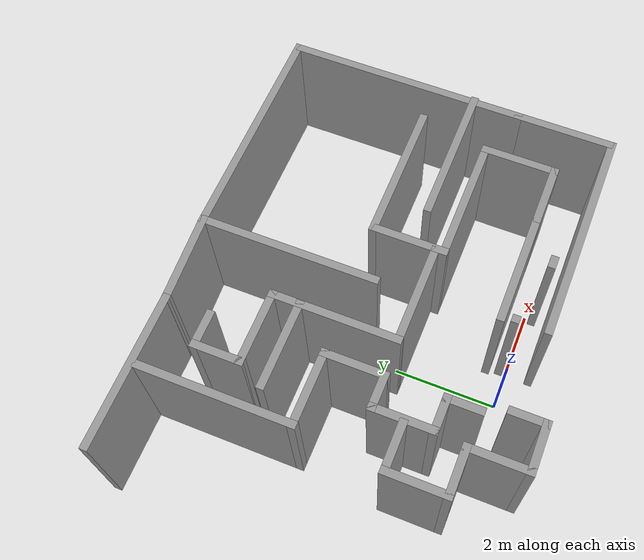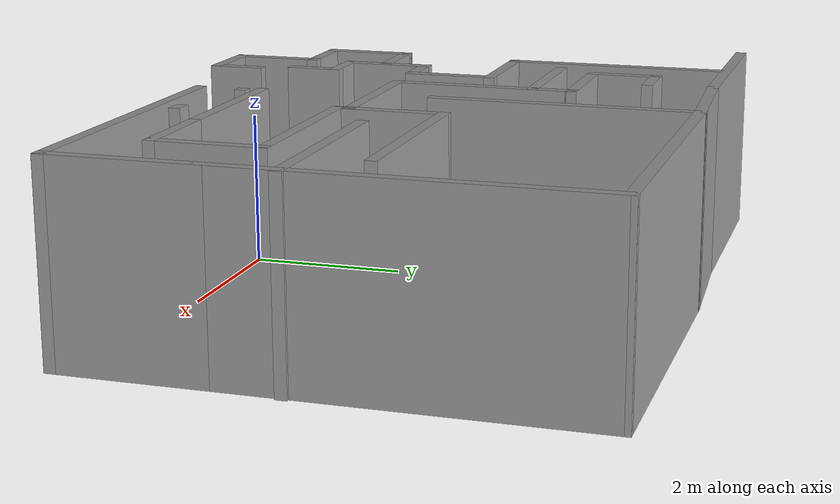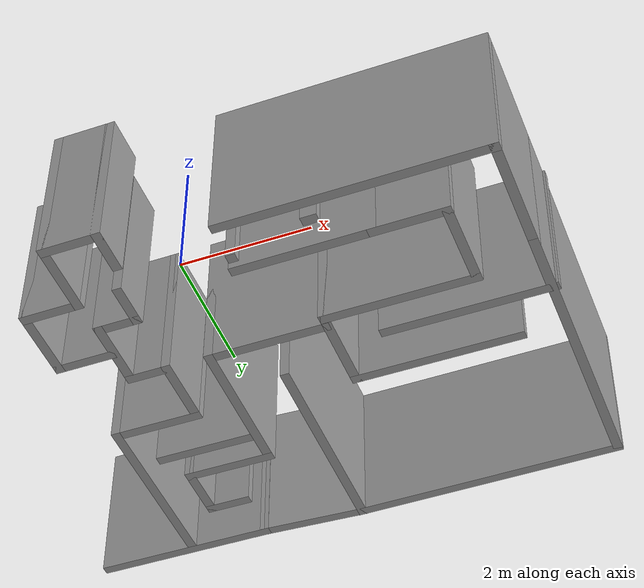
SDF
<?xml version='1.0'?>
<sdf version='1.6'>
  <model name='room2'>
    <pose frame=''>0.451595 2.56192 0 0 -0 0</pose>
    <link name='Wall_10'>
      <collision name='Wall_10_Collision'>
        <geometry>
          <box>
            <size>1.25 0.15 2.5</size>
          </box>
        </geometry>
        <pose frame=''>0 0 1.25 0 -0 0</pose>
      </collision>
      <visual name='Wall_10_Visual'>
        <pose frame=''>0 0 1.25 0 -0 0</pose>
        <geometry>
          <box>
            <size>1.25 0.15 2.5</size>
          </box>
        </geometry>
        <material>
          <script>
            <uri>file://media/materials/scripts/gazebo.material</uri>
            <name>Gazebo/Grey</name>
          </script>
          <ambient>1 1 1 1</ambient>
        </material>
        <meta>
          <layer>0</layer>
        </meta>
      </visual>
      <pose frame=''>-1.50674 -0.141525 0 0 -0 1.5708</pose>
    </link>
    <link name='Wall_11'>
      <collision name='Wall_11_Collision'>
        <geometry>
          <box>
            <size>1.5 0.15 2.5</size>
          </box>
        </geometry>
        <pose frame=''>0 0 1.25 0 -0 0</pose>
      </collision>
      <visual name='Wall_11_Visual'>
        <pose frame=''>0 0 1.25 0 -0 0</pose>
        <geometry>
          <box>
            <size>1.5 0.15 2.5</size>
          </box>
        </geometry>
        <material>
          <script>
            <uri>file://media/materials/scripts/gazebo.material</uri>
            <name>Gazebo/Grey</name>
          </script>
          <ambient>1 1 1 1</ambient>
        </material>
        <meta>
          <layer>0</layer>
        </meta>
      </visual>
      <pose frame=''>-2.18174 0.408475 0 0 -0 3.14159</pose>
    </link>
    <link name='Wall_12'>
      <collision name='Wall_12_Collision'>
        <geometry>
          <box>
            <size>3 0.15 2.5</size>
          </box>
        </geometry>
        <pose frame=''>0 0 1.25 0 -0 0</pose>
      </collision>
      <visual name='Wall_12_Visual'>
        <pose frame=''>0 0 1.25 0 -0 0</pose>
        <geometry>
          <box>
            <size>3 0.15 2.5</size>
          </box>
        </geometry>
        <material>
          <script>
            <uri>file://media/materials/scripts/gazebo.material</uri>
            <name>Gazebo/Grey</name>
          </script>
          <ambient>1 1 1 1</ambient>
        </material>
        <meta>
          <layer>0</layer>
        </meta>
      </visual>
      <pose frame=''>-2.85674 1.83347 0 0 -0 1.5708</pose>
    </link>
    <link name='Wall_14'>
      <collision name='Wall_14_Collision'>
        <geometry>
          <box>
            <size>3 0.15 2.5</size>
          </box>
        </geometry>
        <pose frame=''>0 0 1.25 0 -0 0</pose>
      </collision>
      <visual name='Wall_14_Visual'>
        <pose frame=''>0 0 1.25 0 -0 0</pose>
        <geometry>
          <box>
            <size>3 0.15 2.5</size>
          </box>
        </geometry>
        <material>
          <script>
            <uri>file://media/materials/scripts/gazebo.material</uri>
            <name>Gazebo/Grey</name>
          </script>
          <ambient>1 1 1 1</ambient>
        </material>
        <meta>
          <layer>0</layer>
        </meta>
      </visual>
      <pose frame=''>-2.99398 3.37703 0 0 -0 0</pose>
    </link>
    <link name='Wall_16'>
      <collision name='Wall_16_Collision'>
        <geometry>
          <box>
            <size>0.75 0.15 2.5</size>
          </box>
        </geometry>
        <pose frame=''>0 0 1.25 0 -0 0</pose>
      </collision>
      <visual name='Wall_16_Visual'>
        <pose frame=''>0 0 1.25 0 -0 0</pose>
        <geometry>
          <box>
            <size>0.75 0.15 2.5</size>
          </box>
        </geometry>
        <material>
          <script>
            <uri>file://media/materials/scripts/gazebo.material</uri>
            <name>Gazebo/Grey</name>
          </script>
          <ambient>1 1 1 1</ambient>
        </material>
        <meta>
          <layer>0</layer>
        </meta>
      </visual>
      <pose frame=''>-1.86898 2.52703 0 0 -0 3.14159</pose>
    </link>
    <link name='Wall_17'>
      <collision name='Wall_17_Collision'>
        <geometry>
          <box>
            <size>1 0.15 2.5</size>
          </box>
        </geometry>
        <pose frame=''>0 0 1.25 0 -0 0</pose>
      </collision>
      <visual name='Wall_17_Visual'>
        <pose frame=''>0 0 1.25 0 -0 0</pose>
        <geometry>
          <box>
            <size>1 0.15 2.5</size>
          </box>
        </geometry>
        <material>
          <script>
            <uri>file://media/materials/scripts/gazebo.material</uri>
            <name>Gazebo/Grey</name>
          </script>
          <ambient>1 1 1 1</ambient>
        </material>
        <meta>
          <layer>0</layer>
        </meta>
      </visual>
      <pose frame=''>-2.16898 2.10203 0 0 -0 -1.5708</pose>
    </link>
    <link name='Wall_18'>
      <collision name='Wall_18_Collision'>
        <geometry>
          <box>
            <size>1.5 0.15 2.5</size>
          </box>
        </geometry>
        <pose frame=''>0 0 1.25 0 -0 0</pose>
      </collision>
      <visual name='Wall_18_Visual'>
        <pose frame=''>0 0 1.25 0 -0 0</pose>
        <geometry>
          <box>
            <size>1.5 0.15 2.5</size>
          </box>
        </geometry>
        <material>
          <script>
            <uri>file://media/materials/scripts/gazebo.material</uri>
            <name>Gazebo/Grey</name>
          </script>
          <ambient>1 1 1 1</ambient>
        </material>
        <meta>
          <layer>0</layer>
        </meta>
      </visual>
      <pose frame=''>-1.49398 1.67703 0 0 -0 0</pose>
    </link>
    <link name='Wall_19'>
      <collision name='Wall_19_Collision'>
        <geometry>
          <box>
            <size>2.5 0.15 2.5</size>
          </box>
        </geometry>
        <pose frame=''>0 0 1.25 0 -0 0</pose>
      </collision>
      <visual name='Wall_19_Visual'>
        <pose frame=''>0 0 1.25 0 -0 0</pose>
        <geometry>
          <box>
            <size>2.5 0.15 2.5</size>
          </box>
        </geometry>
        <material>
          <script>
            <uri>file://media/materials/scripts/gazebo.material</uri>
            <name>Gazebo/Grey</name>
          </script>
          <ambient>1 1 1 1</ambient>
        </material>
        <meta>
          <layer>0</layer>
        </meta>
      </visual>
      <pose frame=''>-0.818983 0.502027 0 0 -0 -1.5708</pose>
    </link>
    <link name='Wall_2'>
      <collision name='Wall_2_Collision'>
        <geometry>
          <box>
            <size>1 0.15 2.5</size>
          </box>
        </geometry>
        <pose frame=''>0 0 1.25 0 -0 0</pose>
      </collision>
      <visual name='Wall_2_Visual'>
        <pose frame=''>0 0 1.25 0 -0 0</pose>
        <geometry>
          <box>
            <size>1 0.15 2.5</size>
          </box>
        </geometry>
        <material>
          <script>
            <uri>file://media/materials/scripts/gazebo.material</uri>
            <name>Gazebo/Grey</name>
          </script>
          <ambient>1 1 1 1</ambient>
        </material>
        <meta>
          <layer>0</layer>
        </meta>
      </visual>
      <pose frame=''>-1.75152 -3.46471 0 0 -0 3.14159</pose>
    </link>
    <link name='Wall_22'>
      <collision name='Wall_22_Collision'>
        <geometry>
          <box>
            <size>4.43213 0.15 2.5</size>
          </box>
        </geometry>
        <pose frame=''>0 0 1.25 0 -0 0</pose>
      </collision>
      <visual name='Wall_22_Visual'>
        <pose frame=''>0 0 1.25 0 -0 0</pose>
        <geometry>
          <box>
            <size>4.43213 0.15 2.5</size>
          </box>
        </geometry>
        <material>
          <script>
            <uri>file://media/materials/scripts/gazebo.material</uri>
            <name>Gazebo/Grey</name>
          </script>
          <ambient>1 1 1 1</ambient>
        </material>
        <meta>
          <layer>0</layer>
        </meta>
      </visual>
      <pose frame=''>2.24002 3.44403 0 0 -0 -0.007941</pose>
    </link>
    <link name='Wall_23'>
      <collision name='Wall_23_Collision'>
        <geometry>
          <box>
            <size>4.75 0.15 2.5</size>
          </box>
        </geometry>
        <pose frame=''>0 0 1.25 0 -0 0</pose>
      </collision>
      <visual name='Wall_23_Visual'>
        <pose frame=''>0 0 1.25 0 -0 0</pose>
        <geometry>
          <box>
            <size>4.75 0.15 2.5</size>
          </box>
        </geometry>
        <material>
          <script>
            <uri>file://media/materials/scripts/gazebo.material</uri>
            <name>Gazebo/Grey</name>
          </script>
          <ambient>1 1 1 1</ambient>
        </material>
        <meta>
          <layer>0</layer>
        </meta>
      </visual>
      <pose frame=''>4.38102 1.12703 0 0 -0 -1.5708</pose>
    </link>
    <link name='Wall_29'>
      <collision name='Wall_29_Collision'>
        <geometry>
          <box>
            <size>1.5 0.15 2.5</size>
          </box>
        </geometry>
        <pose frame=''>0 0 1.25 0 -0 0</pose>
      </collision>
      <visual name='Wall_29_Visual'>
        <pose frame=''>0 0 1.25 0 -0 0</pose>
        <geometry>
          <box>
            <size>1.5 0.15 2.5</size>
          </box>
        </geometry>
        <material>
          <script>
            <uri>file://media/materials/scripts/gazebo.material</uri>
            <name>Gazebo/Grey</name>
          </script>
          <ambient>1 1 1 1</ambient>
        </material>
        <meta>
          <layer>0</layer>
        </meta>
      </visual>
      <pose frame=''>1.07379 -0.154278 0 0 -0 -1.5708</pose>
    </link>
    <link name='Wall_3'>
      <collision name='Wall_3_Collision'>
        <geometry>
          <box>
            <size>1.25 0.15 2.5</size>
          </box>
        </geometry>
        <pose frame=''>0 0 1.25 0 -0 0</pose>
      </collision>
      <visual name='Wall_3_Visual'>
        <pose frame=''>0 0 1.25 0 -0 0</pose>
        <geometry>
          <box>
            <size>1.25 0.15 2.5</size>
          </box>
        </geometry>
        <material>
          <script>
            <uri>file://media/materials/scripts/gazebo.material</uri>
            <name>Gazebo/Grey</name>
          </script>
          <ambient>1 1 1 1</ambient>
        </material>
        <meta>
          <layer>0</layer>
        </meta>
      </visual>
      <pose frame=''>-2.17652 -2.91471 0 0 -0 1.5708</pose>
    </link>
    <link name='Wall_30'>
      <collision name='Wall_30_Collision'>
        <geometry>
          <box>
            <size>2.5 0.15 2.5</size>
          </box>
        </geometry>
        <pose frame=''>0 0 1.25 0 -0 0</pose>
      </collision>
      <visual name='Wall_30_Visual'>
        <pose frame=''>0 0 1.25 0 -0 0</pose>
        <geometry>
          <box>
            <size>2.5 0.15 2.5</size>
          </box>
        </geometry>
        <material>
          <script>
            <uri>file://media/materials/scripts/gazebo.material</uri>
            <name>Gazebo/Grey</name>
          </script>
          <ambient>1 1 1 1</ambient>
        </material>
        <meta>
          <layer>0</layer>
        </meta>
      </visual>
      <pose frame=''>2.24879 -0.829278 0 0 -0 0</pose>
    </link>
    <link name='Wall_31'>
      <collision name='Wall_31_Collision'>
        <geometry>
          <box>
            <size>1.5 0.15 2.5</size>
          </box>
        </geometry>
        <pose frame=''>0 0 1.25 0 -0 0</pose>
      </collision>
      <visual name='Wall_31_Visual'>
        <pose frame=''>0 0 1.25 0 -0 0</pose>
        <geometry>
          <box>
            <size>1.5 0.15 2.5</size>
          </box>
        </geometry>
        <material>
          <script>
            <uri>file://media/materials/scripts/gazebo.material</uri>
            <name>Gazebo/Grey</name>
          </script>
          <ambient>1 1 1 1</ambient>
        </material>
        <meta>
          <layer>0</layer>
        </meta>
      </visual>
      <pose frame=''>3.42379 -1.50428 0 0 -0 -1.5708</pose>
    </link>
    <link name='Wall_32'>
      <collision name='Wall_32_Collision'>
        <geometry>
          <box>
            <size>1.25 0.15 2.5</size>
          </box>
        </geometry>
        <pose frame=''>0 0 1.25 0 -0 0</pose>
      </collision>
      <visual name='Wall_32_Visual'>
        <pose frame=''>0 0 1.25 0 -0 0</pose>
        <geometry>
          <box>
            <size>1.25 0.15 2.5</size>
          </box>
        </geometry>
        <material>
          <script>
            <uri>file://media/materials/scripts/gazebo.material</uri>
            <name>Gazebo/Grey</name>
          </script>
          <ambient>1 1 1 1</ambient>
        </material>
        <meta>
          <layer>0</layer>
        </meta>
      </visual>
      <pose frame=''>2.87379 -2.17928 0 0 -0 3.14159</pose>
    </link>
    <link name='Wall_37'>
      <collision name='Wall_37_Collision'>
        <geometry>
          <box>
            <size>2 0.15 2.5</size>
          </box>
        </geometry>
        <pose frame=''>0 0 1.25 0 -0 0</pose>
      </collision>
      <visual name='Wall_37_Visual'>
        <pose frame=''>0 0 1.25 0 -0 0</pose>
        <geometry>
          <box>
            <size>2 0.15 2.5</size>
          </box>
        </geometry>
        <material>
          <script>
            <uri>file://media/materials/scripts/gazebo.material</uri>
            <name>Gazebo/Grey</name>
          </script>
          <ambient>1 1 1 1</ambient>
        </material>
        <meta>
          <layer>0</layer>
        </meta>
      </visual>
      <pose frame=''>4.38102 -2.09797 0 0 -0 -1.5708</pose>
    </link>
    <link name='Wall_38'>
      <collision name='Wall_38_Collision'>
        <geometry>
          <box>
            <size>4.25 0.15 2.5</size>
          </box>
        </geometry>
        <pose frame=''>0 0 1.25 0 -0 0</pose>
      </collision>
      <visual name='Wall_38_Visual'>
        <pose frame=''>0 0 1.25 0 -0 0</pose>
        <geometry>
          <box>
            <size>4.25 0.15 2.5</size>
          </box>
        </geometry>
        <material>
          <script>
            <uri>file://media/materials/scripts/gazebo.material</uri>
            <name>Gazebo/Grey</name>
          </script>
          <ambient>1 1 1 1</ambient>
        </material>
        <meta>
          <layer>0</layer>
        </meta>
      </visual>
      <pose frame=''>2.33102 -3.02297 0 0 -0 3.14159</pose>
    </link>
    <link name='Wall_4'>
      <collision name='Wall_4_Collision'>
        <geometry>
          <box>
            <size>1 0.15 2.5</size>
          </box>
        </geometry>
        <pose frame=''>0 0 1.25 0 -0 0</pose>
      </collision>
      <visual name='Wall_4_Visual'>
        <pose frame=''>0 0 1.25 0 -0 0</pose>
        <geometry>
          <box>
            <size>1 0.15 2.5</size>
          </box>
        </geometry>
        <material>
          <script>
            <uri>file://media/materials/scripts/gazebo.material</uri>
            <name>Gazebo/Grey</name>
          </script>
          <ambient>1 1 1 1</ambient>
        </material>
        <meta>
          <layer>0</layer>
        </meta>
      </visual>
      <pose frame=''>-2.60152 -2.36471 0 0 -0 3.14159</pose>
    </link>
    <link name='Wall_40'>
      <collision name='Wall_40_Collision'>
        <geometry>
          <box>
            <size>0.15 0.15 2.5</size>
          </box>
        </geometry>
        <pose frame=''>0 0 1.25 0 -0 0</pose>
      </collision>
      <visual name='Wall_40_Visual'>
        <pose frame=''>0 0 1.25 0 -0 0</pose>
        <geometry>
          <box>
            <size>0.15 0.15 2.5</size>
          </box>
        </geometry>
        <material>
          <script>
            <uri>file://media/materials/scripts/gazebo.material</uri>
            <name>Gazebo/Grey</name>
          </script>
          <ambient>1 1 1 1</ambient>
        </material>
        <meta>
          <layer>0</layer>
        </meta>
      </visual>
      <pose frame=''>0.281017 -2.42297 0 0 -0 0</pose>
    </link>
    <link name='Wall_41'>
      <collision name='Wall_41_Collision'>
        <geometry>
          <box>
            <size>0.15 0.15 2.5</size>
          </box>
        </geometry>
        <pose frame=''>0 0 1.25 0 -0 0</pose>
      </collision>
      <visual name='Wall_41_Visual'>
        <pose frame=''>0 0 1.25 0 -0 0</pose>
        <geometry>
          <box>
            <size>0.15 0.15 2.5</size>
          </box>
        </geometry>
        <material>
          <script>
            <uri>file://media/materials/scripts/gazebo.material</uri>
            <name>Gazebo/Grey</name>
          </script>
          <ambient>1 1 1 1</ambient>
        </material>
        <meta>
          <layer>0</layer>
        </meta>
      </visual>
      <pose frame=''>0.281017 -2.42297 0 0 -0 0</pose>
    </link>
    <link name='Wall_46'>
      <collision name='Wall_46_Collision'>
        <geometry>
          <box>
            <size>2.25 0.15 2.5</size>
          </box>
        </geometry>
        <pose frame=''>0 0 1.25 0 -0 0</pose>
      </collision>
      <visual name='Wall_46_Visual'>
        <pose frame=''>0 0 1.25 0 -0 0</pose>
        <geometry>
          <box>
            <size>2.25 0.15 2.5</size>
          </box>
        </geometry>
        <material>
          <script>
            <uri>file://media/materials/scripts/gazebo.material</uri>
            <name>Gazebo/Grey</name>
          </script>
          <ambient>1 1 1 1</ambient>
        </material>
        <meta>
          <layer>0</layer>
        </meta>
      </visual>
      <pose frame=''>1.27379 -2.17928 0 0 -0 3.14159</pose>
    </link>
    <link name='Wall_48'>
      <collision name='Wall_48_Collision'>
        <geometry>
          <box>
            <size>0.25 0.15 2.5</size>
          </box>
        </geometry>
        <pose frame=''>0 0 1.25 0 -0 0</pose>
      </collision>
      <visual name='Wall_48_Visual'>
        <pose frame=''>0 0 1.25 0 -0 0</pose>
        <geometry>
          <box>
            <size>0.25 0.15 2.5</size>
          </box>
        </geometry>
        <material>
          <script>
            <uri>file://media/materials/scripts/gazebo.material</uri>
            <name>Gazebo/Grey</name>
          </script>
          <ambient>1 1 1 1</ambient>
        </material>
        <meta>
          <layer>0</layer>
        </meta>
      </visual>
      <pose frame=''>1.57997 -2.70724 0 0 -0 0</pose>
    </link>
    <link name='Wall_5'>
      <collision name='Wall_5_Collision'>
        <geometry>
          <box>
            <size>1.25 0.15 2.5</size>
          </box>
        </geometry>
        <pose frame=''>0 0 1.25 0 -0 0</pose>
      </collision>
      <visual name='Wall_5_Visual'>
        <pose frame=''>0 0 1.25 0 -0 0</pose>
        <geometry>
          <box>
            <size>1.25 0.15 2.5</size>
          </box>
        </geometry>
        <material>
          <script>
            <uri>file://media/materials/scripts/gazebo.material</uri>
            <name>Gazebo/Grey</name>
          </script>
          <ambient>1 1 1 1</ambient>
        </material>
        <meta>
          <layer>0</layer>
        </meta>
      </visual>
      <pose frame=''>-3.02652 -1.81471 0 0 -0 1.5708</pose>
    </link>
    <link name='Wall_50'>
      <collision name='Wall_50_Collision'>
        <geometry>
          <box>
            <size>2.75 0.15 2.5</size>
          </box>
        </geometry>
        <pose frame=''>0 0 1.25 0 -0 0</pose>
      </collision>
      <visual name='Wall_50_Visual'>
        <pose frame=''>0 0 1.25 0 -0 0</pose>
        <geometry>
          <box>
            <size>2.75 0.15 2.5</size>
          </box>
        </geometry>
        <material>
          <script>
            <uri>file://media/materials/scripts/gazebo.material</uri>
            <name>Gazebo/Grey</name>
          </script>
          <ambient>1 1 1 1</ambient>
        </material>
        <meta>
          <layer>0</layer>
        </meta>
      </visual>
      <pose frame=''>3.11898 -0.261754 0 0 -0 0</pose>
    </link>
    <link name='Wall_52'>
      <collision name='Wall_52_Collision'>
        <geometry>
          <box>
            <size>1.75 0.15 2.5</size>
          </box>
        </geometry>
        <pose frame=''>0 0 1.25 0 -0 0</pose>
      </collision>
      <visual name='Wall_52_Visual'>
        <pose frame=''>0 0 1.25 0 -0 0</pose>
        <geometry>
          <box>
            <size>1.75 0.15 2.5</size>
          </box>
        </geometry>
        <material>
          <script>
            <uri>file://media/materials/scripts/gazebo.material</uri>
            <name>Gazebo/Grey</name>
          </script>
          <ambient>1 1 1 1</ambient>
        </material>
        <meta>
          <layer>0</layer>
        </meta>
      </visual>
      <pose frame=''>-1.62727 1.16108 0 0 -0 0</pose>
    </link>
    <link name='Wall_55'>
      <collision name='Wall_55_Collision'>
        <geometry>
          <box>
            <size>3.5 0.15 2.5</size>
          </box>
        </geometry>
        <pose frame=''>0 0 1.25 0 -0 0</pose>
      </collision>
      <visual name='Wall_55_Visual'>
        <pose frame=''>0 0 1.25 0 -0 0</pose>
        <geometry>
          <box>
            <size>3.5 0.15 2.5</size>
          </box>
        </geometry>
        <material>
          <script>
            <uri>file://media/materials/scripts/gazebo.material</uri>
            <name>Gazebo/Grey</name>
          </script>
          <ambient>1 1 1 1</ambient>
        </material>
        <meta>
          <layer>0</layer>
        </meta>
      </visual>
      <pose frame=''>0.099024 1.78603 0 0 -0 -1.5708</pose>
    </link>
    <link name='Wall_6'>
      <collision name='Wall_6_Collision'>
        <geometry>
          <box>
            <size>1 0.15 2.5</size>
          </box>
        </geometry>
        <pose frame=''>0 0 1.25 0 -0 0</pose>
      </collision>
      <visual name='Wall_6_Visual'>
        <pose frame=''>0 0 1.25 0 -0 0</pose>
        <geometry>
          <box>
            <size>1 0.15 2.5</size>
          </box>
        </geometry>
        <material>
          <script>
            <uri>file://media/materials/scripts/gazebo.material</uri>
            <name>Gazebo/Grey</name>
          </script>
          <ambient>1 1 1 1</ambient>
        </material>
        <meta>
          <layer>0</layer>
        </meta>
      </visual>
      <pose frame=''>-2.60152 -1.26471 0 0 -0 0</pose>
    </link>
    <link name='Wall_61'>
      <collision name='Wall_61_Collision'>
        <geometry>
          <box>
            <size>2 0.15 2.5</size>
          </box>
        </geometry>
        <pose frame=''>0 0 1.25 0 -0 0</pose>
      </collision>
      <visual name='Wall_61_Visual'>
        <pose frame=''>0 0 1.25 0 -0 0</pose>
        <geometry>
          <box>
            <size>2 0.15 2.5</size>
          </box>
        </geometry>
        <material>
          <script>
            <uri>file://media/materials/scripts/gazebo.material</uri>
            <name>Gazebo/Grey</name>
          </script>
          <ambient>1 1 1 1</ambient>
        </material>
        <meta>
          <layer>0</layer>
        </meta>
      </visual>
      <pose frame=''>0.106017 -0.672973 0 0 -0 0</pose>
    </link>
    <link name='Wall_63'>
      <collision name='Wall_63_Collision'>
        <geometry>
          <box>
            <size>1.82012 0.15 2.5</size>
          </box>
        </geometry>
        <pose frame=''>0 0 1.25 0 -0 0</pose>
      </collision>
      <visual name='Wall_63_Visual'>
        <pose frame=''>0 0 1.25 0 -0 0</pose>
        <geometry>
          <box>
            <size>1.82012 0.15 2.5</size>
          </box>
        </geometry>
        <material>
          <script>
            <uri>file://media/materials/scripts/gazebo.material</uri>
            <name>Gazebo/Grey</name>
          </script>
          <ambient>1 1 1 1</ambient>
        </material>
        <meta>
          <layer>0</layer>
        </meta>
      </visual>
      <pose frame=''>-0.734979 3.41903 0 0 -0 0.050319</pose>
    </link>
    <link name='Wall_66'>
      <collision name='Wall_66_Collision'>
        <geometry>
          <box>
            <size>2.75 0.15 2.5</size>
          </box>
        </geometry>
        <pose frame=''>0 0 1.25 0 -0 0</pose>
      </collision>
      <visual name='Wall_66_Visual'>
        <pose frame=''>0 0 1.25 0 -0 0</pose>
        <geometry>
          <box>
            <size>2.75 0.15 2.5</size>
          </box>
        </geometry>
        <material>
          <script>
            <uri>file://media/materials/scripts/gazebo.material</uri>
            <name>Gazebo/Grey</name>
          </script>
          <ambient>1 1 1 1</ambient>
        </material>
        <meta>
          <layer>0</layer>
        </meta>
      </visual>
      <pose frame=''>2.37379 0.520722 0 0 -0 0</pose>
    </link>
    <link name='Wall_68'>
      <collision name='Wall_68_Collision'>
        <geometry>
          <box>
            <size>0.75 0.15 2.5</size>
          </box>
        </geometry>
        <pose frame=''>0 0 1.25 0 -0 0</pose>
      </collision>
      <visual name='Wall_68_Visual'>
        <pose frame=''>0 0 1.25 0 -0 0</pose>
        <geometry>
          <box>
            <size>0.75 0.15 2.5</size>
          </box>
        </geometry>
        <material>
          <script>
            <uri>file://media/materials/scripts/gazebo.material</uri>
            <name>Gazebo/Grey</name>
          </script>
          <ambient>1 1 1 1</ambient>
        </material>
        <meta>
          <layer>0</layer>
        </meta>
      </visual>
      <pose frame=''>-1.32652 -3.16471 0 0 -0 1.5708</pose>
    </link>
    <link name='Wall_70'>
      <collision name='Wall_70_Collision'>
        <geometry>
          <box>
            <size>0.75 0.15 2.5</size>
          </box>
        </geometry>
        <pose frame=''>0 0 1.25 0 -0 0</pose>
      </collision>
      <visual name='Wall_70_Visual'>
        <pose frame=''>0 0 1.25 0 -0 0</pose>
        <geometry>
          <box>
            <size>0.75 0.15 2.5</size>
          </box>
        </geometry>
        <material>
          <script>
            <uri>file://media/materials/scripts/gazebo.material</uri>
            <name>Gazebo/Grey</name>
          </script>
          <ambient>1 1 1 1</ambient>
        </material>
        <meta>
          <layer>0</layer>
        </meta>
      </visual>
      <pose frame=''>-1.80674 -1.79153 0 0 -0 0</pose>
    </link>
    <link name='Wall_71'>
      <collision name='Wall_71_Collision'>
        <geometry>
          <box>
            <size>0.75 0.15 2.5</size>
          </box>
        </geometry>
        <pose frame=''>0 0 1.25 0 -0 0</pose>
      </collision>
      <visual name='Wall_71_Visual'>
        <pose frame=''>0 0 1.25 0 -0 0</pose>
        <geometry>
          <box>
            <size>0.75 0.15 2.5</size>
          </box>
        </geometry>
        <material>
          <script>
            <uri>file://media/materials/scripts/gazebo.material</uri>
            <name>Gazebo/Grey</name>
          </script>
          <ambient>1 1 1 1</ambient>
        </material>
        <meta>
          <layer>0</layer>
        </meta>
      </visual>
      <pose frame=''>-1.50674 -2.09152 0 0 -0 -1.5708</pose>
    </link>
    <link name='Wall_8'>
      <collision name='Wall_8_Collision'>
        <geometry>
          <box>
            <size>1.25 0.15 2.5</size>
          </box>
        </geometry>
        <pose frame=''>0 0 1.25 0 -0 0</pose>
      </collision>
      <visual name='Wall_8_Visual'>
        <pose frame=''>0 0 1.25 0 -0 0</pose>
        <geometry>
          <box>
            <size>1.25 0.15 2.5</size>
          </box>
        </geometry>
        <material>
          <script>
            <uri>file://media/materials/scripts/gazebo.material</uri>
            <name>Gazebo/Grey</name>
          </script>
          <ambient>1 1 1 1</ambient>
        </material>
        <meta>
          <layer>0</layer>
        </meta>
      </visual>
      <pose frame=''>-2.10674 -1.24152 0 0 -0 1.5708</pose>
    </link>
    <link name='Wall_9'>
      <collision name='Wall_9_Collision'>
        <geometry>
          <box>
            <size>0.75 0.15 2.5</size>
          </box>
        </geometry>
        <pose frame=''>0 0 1.25 0 -0 0</pose>
      </collision>
      <visual name='Wall_9_Visual'>
        <pose frame=''>0 0 1.25 0 -0 0</pose>
        <geometry>
          <box>
            <size>0.75 0.15 2.5</size>
          </box>
        </geometry>
        <material>
          <script>
            <uri>file://media/materials/scripts/gazebo.material</uri>
            <name>Gazebo/Grey</name>
          </script>
          <ambient>1 1 1 1</ambient>
        </material>
        <meta>
          <layer>0</layer>
        </meta>
      </visual>
      <pose frame=''>-1.80674 -0.691525 0 0 -0 0</pose>
    </link>
    <static>1</static>
  </model>
</sdf>
